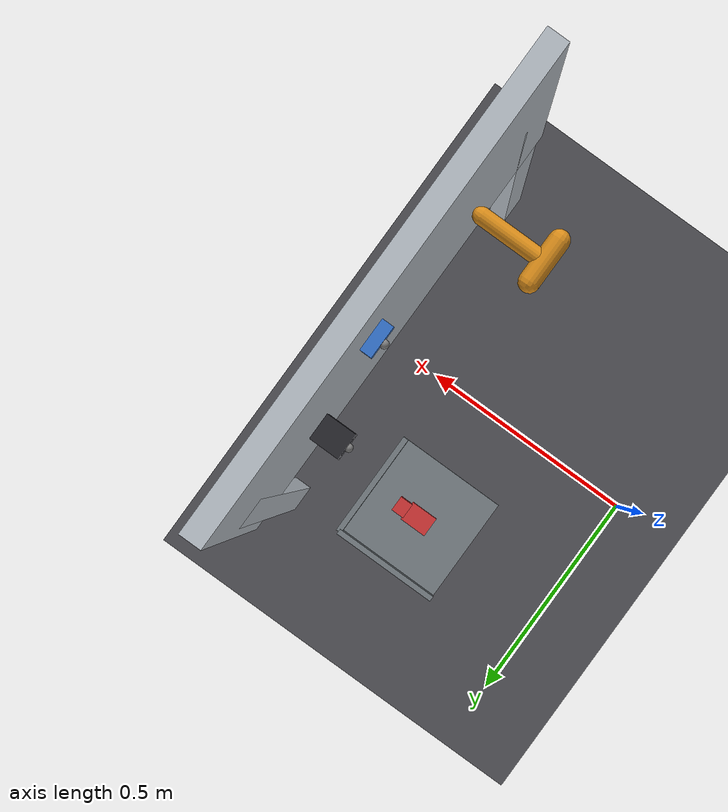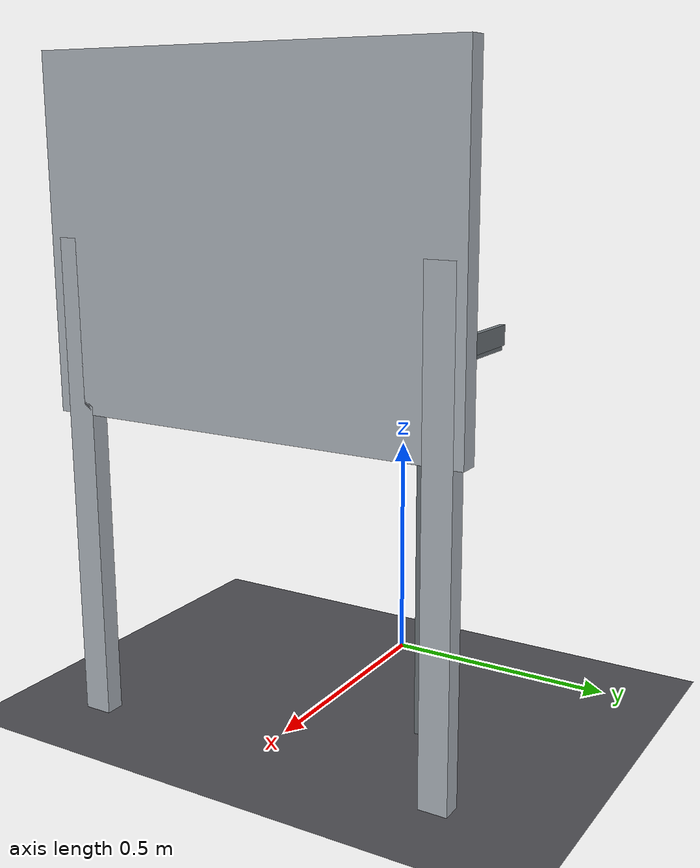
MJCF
<mujoco model="trion_worksite_w1">
  <option timestep="0.002" gravity="0 0 -9.81"/>

  <visual>
    <headlight ambient="0.4 0.4 0.4" diffuse="0.6 0.6 0.6"/>
  </visual>

  <asset>
    <material name="floor_mat" rgba="0.30 0.30 0.32 1"/>
    <material name="panel_mat" rgba="0.72 0.75 0.78 1"/>
    <material name="handle_mat" rgba="0.85 0.55 0.10 1"/>
    <material name="latch_mat" rgba="0.20 0.45 0.80 1"/>
    <material name="socket_mat" rgba="0.15 0.15 0.17 1"/>
    <material name="plug_mat" rgba="0.80 0.20 0.20 1"/>
    <material name="tray_mat" rgba="0.45 0.48 0.50 1"/>
  </asset>

  <worldbody>
    <light directional="true" pos="0 0 3" dir="0 0 -1"/>
    <geom name="floor" type="plane" size="5 5 0.1" material="floor_mat"/>

    <!-- Vertical panel face at robot working height, facing -x -->
    <body name="panel" pos="0.60 0 1.00">
      <geom name="panel_face" type="box" size="0.02 0.45 0.35" material="panel_mat"/>
      <!-- support legs down to the floor -->
      <geom name="panel_leg_l" type="box" size="0.02 0.03 0.50" pos="0 -0.40 -0.50" material="panel_mat"/>
      <geom name="panel_leg_r" type="box" size="0.02 0.03 0.50" pos="0 0.40 -0.50" material="panel_mat"/>

      <!-- T-02 target: hinged handle (pull down 0→90°), sprung lightly closed -->
      <body name="handle" pos="-0.05 -0.20 0.15">
        <joint name="handle_hinge" type="hinge" axis="0 1 0" range="0 1.5708"
               damping="0.5" springref="0" stiffness="0.3"/>
        <geom name="handle_lever" type="capsule" fromto="0 0 0  -0.12 0 0"
              size="0.015" material="handle_mat" mass="0.15"/>
        <geom name="handle_grip" type="capsule" fromto="-0.12 -0.04 0  -0.12 0.04 0"
              size="0.018" material="handle_mat" mass="0.10"/>
        <site name="handle_grip_site" pos="-0.12 0 0" size="0.01"/>
      </body>

      <!-- Latch: sprung slide bolt beside the handle -->
      <body name="latch" pos="-0.03 0.05 0.15">
        <joint name="latch_slide" type="slide" axis="0 1 0" range="0 0.04"
               damping="2.0" springref="0" stiffness="40"/>
        <geom name="latch_bolt" type="box" size="0.012 0.03 0.012"
              material="latch_mat" mass="0.05"/>
        <site name="latch_tab_site" pos="-0.015 0 0" size="0.008"/>
      </body>

      <!-- T-03 target: connector socket — rectangular recess built from four
           walls, opening toward -x -->
      <body name="socket" pos="-0.02 0.22 -0.10">
        <geom name="socket_wall_top" type="box" size="0.030 0.026 0.004" pos="-0.030 0 0.018" material="socket_mat"/>
        <geom name="socket_wall_bot" type="box" size="0.030 0.026 0.004" pos="-0.030 0 -0.018" material="socket_mat"/>
        <geom name="socket_wall_l" type="box" size="0.030 0.004 0.014" pos="-0.030 -0.022 0" material="socket_mat"/>
        <geom name="socket_wall_r" type="box" size="0.030 0.004 0.014" pos="-0.030 0.022 0" material="socket_mat"/>
        <site name="socket_entry_site" pos="-0.062 0 0" size="0.008"/>
      </body>
    </body>

    <!-- Tray holding the free connector plug (start state for T-03) -->
    <body name="tray" pos="0.35 0.25 0.80">
      <geom name="tray_top" type="box" size="0.10 0.10 0.01" material="tray_mat"/>
      <geom name="tray_leg" type="box" size="0.02 0.02 0.40" pos="0 0 -0.40" material="tray_mat"/>
      <geom name="tray_lip_x" type="box" size="0.005 0.10 0.02" pos="0.10 0 0.02" material="tray_mat"/>
      <geom name="tray_lip_y" type="box" size="0.10 0.005 0.02" pos="0 0.10 0.02" material="tray_mat"/>
    </body>

    <!-- Free connector plug: peg sized to the socket recess with clearance -->
    <body name="plug" pos="0.35 0.25 0.85">
      <freejoint name="plug_free"/>
      <geom name="plug_body" type="box" size="0.025 0.018 0.010" material="plug_mat" mass="0.08"/>
      <geom name="plug_grip" type="box" size="0.012 0.014 0.020" pos="0.035 0 0" material="plug_mat" mass="0.04"/>
      <site name="plug_grip_site" pos="0.035 0 0" size="0.008"/>
    </body>
  </worldbody>

  <keyframe>
    <!-- home: handle closed, latch retracted, plug resting on tray -->
    <key name="home" qpos="0 0 0.35 0.25 0.85 1 0 0 0"/>
  </keyframe>
</mujoco>
